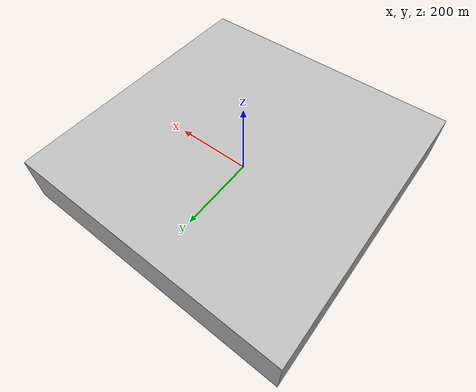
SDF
<sdf version="1.4">
 <world name="compact_underwater_terrain">
  <include><uri>model://sun</uri></include>
  <model name="compact_ocean_box">
   <static>true</static>
   <link name="link">
    <visual name="ground">
     <cast_shadows>false</cast_shadows>
     <pose>0 0 -25.2 0 0 0</pose>
     <geometry><box><size>700 700 .1</size></box></geometry>
     <material>
      <script>
       <uri>file://Media/materials/scripts/sand.material</uri>
       <name>UUVSimulator/SandAndStones</name>
      </script>
     </material>
    </visual>
    <collision name="ground">
     <pose>0 0 -25 0 0 0</pose>
     <geometry><box><size>700 700 .1</size></box></geometry>
    </collision>
    <visual name="surface">
     <cast_shadows>false</cast_shadows>
     <pose>0 0 100 0 0 0</pose>
     <geometry><box><size>700 700 .1</size></box></geometry>
     <material>
      <script>
       <uri>file://Media/materials/scripts/water.material</uri>
       <name>UUVSimulator/StaticDeepWater</name>
      </script>
     </material>
    </visual>
    <visual name="main_water_body">
     <cast_shadows>false</cast_shadows>
     <pose>0 0 35 0 0 0</pose>
     <geometry><box><size>700 700 130</size></box></geometry>
     <material>
      <script><uri>file://Media/materials/scripts/water.material</uri><name>UUVSimulator/StaticWater</name></script>
     </material>
    </visual>
    <visual name="north">
     <cast_shadows>false</cast_shadows>
     <pose>350 0 35 0 0 0</pose>
     <geometry><box><size>.1 700 130</size></box></geometry>
     <material>
      <script><uri>file://Media/materials/scripts/water.material</uri><name>UUVSimulator/SeaWall</name></script>
     </material>
    </visual>
    <visual name="south">
     <cast_shadows>false</cast_shadows>
     <pose>-350 0 35 0 0 0</pose>
     <geometry><box><size>.1 700 130</size></box></geometry>
     <material>
      <script><uri>file://Media/materials/scripts/water.material</uri><name>UUVSimulator/SeaWall</name></script>
     </material>
    </visual>
    <visual name="east">
     <cast_shadows>false</cast_shadows>
     <pose>0 -350 35 0 0 0</pose>
     <geometry><box><size>700 .1 130</size></box></geometry>
     <material>
      <script><uri>file://Media/materials/scripts/water.material</uri><name>UUVSimulator/SeaWall</name></script>
     </material>
    </visual>
    <visual name="west">
     <cast_shadows>false</cast_shadows>
     <pose>0 350 35 0 0 0</pose>
     <geometry><box><size>700 .1 130</size></box></geometry>
     <material>
      <script><uri>file://Media/materials/scripts/water.material</uri><name>UUVSimulator/SeaWall</name></script>
     </material>
    </visual>
   </link>
  </model>
  <plugin name="underwater_current_plugin" filename="libuuv_underwater_current_ros_plugin.so">
   <namespace>hydrodynamics</namespace>
   <constant_current>
    <topic>current_velocity</topic>
    <velocity><mean>0</mean><min>0</min><max>5</max><mu>0.0</mu><noiseAmp>0.0</noiseAmp></velocity>
    <horizontal_angle>
     <mean>0</mean>
     <min>-3.141592653589793238</min>
     <max>3.141592653589793238</max>
     <mu>0.0</mu>
     <noiseAmp>0.0</noiseAmp>
    </horizontal_angle>
    <vertical_angle>
     <mean>0</mean>
     <min>-3.141592653589793238</min>
     <max>3.141592653589793238</max>
     <mu>0.0</mu>
     <noiseAmp>0.0</noiseAmp>
    </vertical_angle>
   </constant_current>
  </plugin>
  <plugin name="sc_interface" filename="libuuv_sc_ros_interface_plugin.so"/>
 </world>
</sdf>
